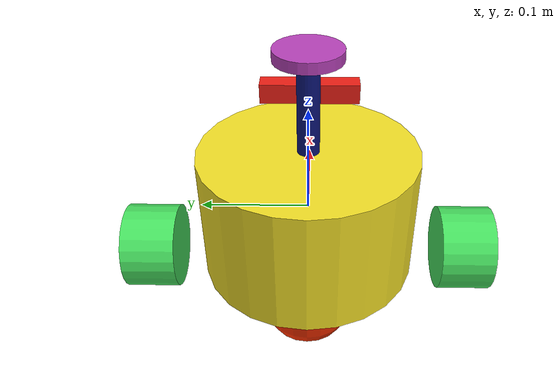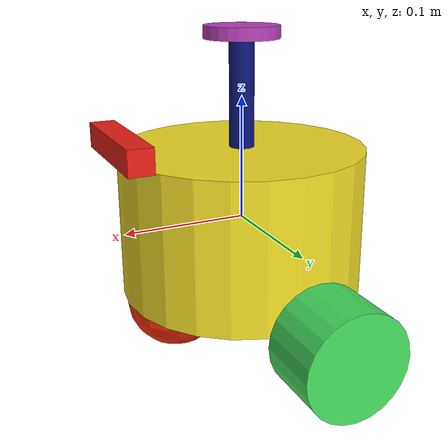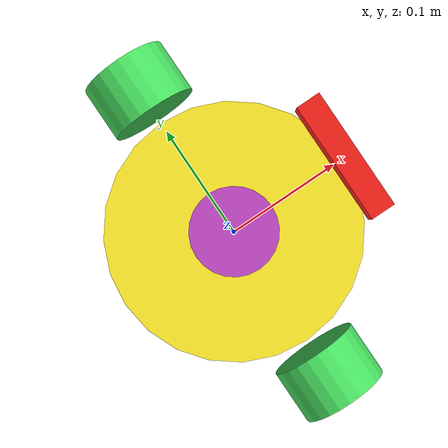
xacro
<robot name="robot" xmlns:xacro="http://www.ros.org/wiki/xacro">
  <link name="base_footprint"></link>
  <joint name="base_joint" type="fixed">
    <parent link="base_footprint" />
    <child link="base_link" />
    <origin xyz="0 0 0" rpy="0 0 0" />
  </joint>
  <link name="base_link">
    <visual>
      <origin xyz="0 0 0" rpy="0 0 0" />
      <geometry>
        <cylinder radius="0.1" length="0.12" />
      </geometry>
      <material name="base_link-material">
        <color rgba="0.9473065367320066 0.8713671191959567 0.14702726648767014 1" />
      </material>
    </visual>
    <collision>
      <origin xyz="0 0 0" rpy="0 0 0" />
      <geometry>
        <cylinder radius="0.5" length="1" />
      </geometry>
    </collision>
    <inertial>
      <origin xyz="0 0 0" rpy="0 0 0" />
      <mass value="200" />
      <inertia ixx="66.66666666666666" ixy="0" ixz="0" iyy="100" iyz="0" izz="66.66666666666666" />
    </inertial>
  </link>
  <joint name="base_link_to_imu" type="fixed">
    <parent link="base_link" />
    <child link="imu" />
    <origin xyz="0 0 0" rpy="0 0 0" />
  </joint>
  <link name="imu">
    <visual>
      <origin xyz="0 0 0" rpy="0 0 0" />
      <geometry>
        <box size="0.1 0.1 0.1" />
      </geometry>
      <material name="imu-material">
        <color rgba="0.9215818562755338 0.11953842797895521 0.08228270712149792 1" />
      </material>
    </visual>
    <collision>
      <origin xyz="0 0 0" rpy="0 0 0" />
      <geometry>
        <box size="0.1 0.1 0.1" />
      </geometry>
    </collision>
    <inertial>
      <origin xyz="0 0 0" rpy="0 0 0" />
      <mass value="1" />
      <inertia ixx="0.16666666666666666" ixy="0" ixz="0" iyy="0.16666666666666666" iyz="0" izz="0.16666666666666666" />
    </inertial>
        <sensor type="imu" name="imu">
            <always_on>true</always_on>
            <update_rate>100</update_rate>
            <origin>0 0 0 0 0 0</origin>
            <imu>
                <noise>
                    <type>gaussian</type>
                    <mean>0</mean>
                    <stddev>0</stddev>
                </noise>
            </imu>
        </sensor>
      </link>
  <gazebo reference="imu">
    <sensor type="imu" name="imu_sensor">
      <plugin filename="libgazebo_ros_imu_sensor.so" name="imu_plugin">
        <ros>
          <namespace>/demo</namespace>
          <remapping>~/out:=imu</remapping>
        </ros>
        <initial_orientation_as_reference>false</initial_orientation_as_reference>
      </plugin>
      <always_on>true</always_on>
      <update_rate>100</update_rate>
      <visualize>true</visualize>
    </sensor>
  </gazebo>
  <joint name="base_link_to_camera" type="fixed">
    <parent link="base_link" />
    <child link="camera" />
    <origin xyz="0.1 0 0.07" rpy="0 0 0" />
  </joint>
  <link name="camera">
    <visual>
      <origin xyz="0 0 0" rpy="0 0 0" />
      <geometry>
        <box size="0.02 0.1 0.02" />
      </geometry>
      <material name="camera-material">
        <color rgba="0.9215818562755338 0.11953842797895521 0.08228270712149792 1" />
      </material>
    </visual>
    <collision>
      <origin xyz="0 0 0" rpy="0 0 0" />
      <geometry>
        <box size="0.02 0.1 0.02" />
      </geometry>
    </collision>
    <inertial>
      <origin xyz="0 0 0" rpy="0 0 0" />
      <mass value="1" />
      <inertia ixx="0.16666666666666666" ixy="0" ixz="0" iyy="0.16666666666666666" iyz="0" izz="0.16666666666666666" />
    </inertial>
        <sensor name="camera" type="camera">
            <always_on>true</always_on>
            <update_rate>100</update_rate>
            <origin>0.1 0 0.07 0 0 0</origin>
            <camera>
                <horizontal_fov>1.3962634</horizontal_fov>
                <image>
                    <width>800</width>
                    <height>600</height>
                    <format>R8G8B8</format>
                </image>
                <clip>
                    <near>0.1</near>
                    <far>100</far>
                </clip>
                <noise>
                    <type>gaussian</type>
                    <mean>0.01</mean>
                </noise>
            </camera>
        </sensor>
      </link>
  <gazebo reference="camera">
    <sensor type="camera" name="camera_sensor">
      <update_rate>30.0</update_rate>
      <camera name="head">
        <horizontal_fov>1.3962634</horizontal_fov>
        <image>
          <width>800</width>
          <height>600</height>
          <format>R8G8B8</format>
        </image>
        <clip>
          <near>0.02</near>
          <far>300</far>
        </clip>
        <noise>
          <type>gaussian</type>
          <mean>0.0</mean>
          <stddev>0.007</stddev>
        </noise>
      </camera>
      <plugin name="camera_controller" filename="libgazebo_ros_camera.so">
        <ros>
          <namespace>/demo</namespace>
        </ros>
        <camera_name>camera</camera_name>
        <frame_name>camera</frame_name>
        <hack_baseline>0.07</hack_baseline>
      </plugin>
    </sensor>
  </gazebo>

  <joint name="base_link_to_front_chaster" type="fixed">
    <parent link="base_link" />
    <child link="front_chaster" />
    <origin xyz="0.06 0 -0.06" rpy="0 0 0" />
  </joint>
  <link name="front_chaster">
    <visual>
      <origin xyz="0 0 0" rpy="0 0 0" />
      <geometry>
        <sphere radius="0.04" />
      </geometry>
      <material name="front_chaster-material">
        <color rgba="1 0.181164244239483 0.04231141061442144 1" />
      </material>
    </visual>
    <collision>
      <origin xyz="0 0 0" rpy="0 0 0" />
      <geometry>
        <sphere radius="0.04" />
      </geometry>
    </collision>
    <inertial>
      <origin xyz="0 0 0" rpy="0 0 0" />
      <mass value="1" />
      <inertia ixx="0.4" ixy="0" ixz="0" iyy="0.4" iyz="0" izz="0.4" />
    </inertial>
  </link>
  <joint name="base_link_to_back_chaster" type="fixed">
    <parent link="base_link" />
    <child link="back_chaster" />
    <origin xyz="-0.06 0 -0.06" rpy="0 0 0" />
  </joint>
  <link name="back_chaster">
    <visual>
      <origin xyz="0 0 0" rpy="0 0 0" />
      <geometry>
        <sphere radius="0.04" />
      </geometry>
      <material name="back_chaster-material">
        <color rgba="1 0.1878207722902346 0 1" />
      </material>
    </visual>
    <collision>
      <origin xyz="0 0 0" rpy="0 0 0" />
      <geometry>
        <sphere radius="0.04" />
      </geometry>
    </collision>
    <inertial>
      <origin xyz="0 0 0" rpy="0 0 0" />
      <mass value="1" />
      <inertia ixx="0.4" ixy="0" ixz="0" iyy="0.4" iyz="0" izz="0.4" />
    </inertial>
  </link>
  <joint name="base_link_to_lidar" type="fixed">
    <parent link="base_link" />
    <child link="lidar" />
    <origin xyz="0 0 0.15000000000000002" rpy="0 0 0" />
  </joint>
  <link name="lidar">
    <visual>
      <origin xyz="0 0 0" rpy="0 0 0" />
      <geometry>
        <cylinder radius="0.03" length="0.01" />
      </geometry>
      <material name="lidar-material">
        <color rgba="0.7156935005005721 0.2541520943200296 0.7230551289161951 1" />
      </material>
    </visual>
    <collision>
      <origin xyz="0 0 0" rpy="0 0 0" />
      <geometry>
        <cylinder radius="0.03" length="0.01" />
      </geometry>
    </collision>
    <inertial>
      <origin xyz="0 0 0" rpy="0 0 0" />
      <mass value="1" />
      <inertia ixx="0.3333333333333333" ixy="0" ixz="0" iyy="0.5" iyz="0" izz="0.3333333333333333" />
    </inertial>
        <sensor type="lidar" name="lidar">
            <always_on>true</always_on>
            <update_rate>5</update_rate>
            <origin>0 0 0.15000000000000002 0 0 0</origin>
            <ray>
                <scan>
                    <horizontal>
                        <samples>360</samples>
                        <resolution>1</resolution>
                        <min_angle>0</min_angle>
                        <max_angle>6.28</max_angle>
                    </horizontal>
                    <range>
                        <min>0.12</min>
                        <max>3.5</max>
                        <resolution>0.015</resolution>
                    </range>
                </scan>
                <noise>
                    <type>gaussian</type>
                    <mean>0</mean>
                    <stddev>0.01</stddev>
                </noise>
            </ray>
        </sensor>
      </link>
  <gazebo reference="lidar">
    <sensor type="ray" name="lidar_sensor">
      <pose>0 0 0 0 0 0</pose>
      <visualize>true</visualize>
      <update_rate>10</update_rate>
      <ray>
        <scan>
          <horizontal>
            <samples>360</samples>
            <resolution>1</resolution>
            <min_angle>0</min_angle>
            <max_angle>6.28</max_angle>
          </horizontal>
        </scan>
        <range>
          <min>0.12</min>
          <max>3.5</max>
          <resolution>0.015</resolution>
        </range>
        <noise>
          <type>gaussian</type>
          <mean>0.0</mean>
          <stddev>0.01</stddev>
        </noise>
      </ray>
      <plugin name="laser_controller" filename="libgazebo_ros_laser.so">
        <ros>
          <namespace>/demo</namespace>
        </ros>
        <topicName>scan</topicName>
        <frameName>lidar</frameName>
      </plugin>
    </sensor>
  </gazebo>
  <joint name="base_link_to_left_wheel" type="continuous">
    <parent link="base_link" />
    <child link="left_wheel" />
    <origin xyz="0 0.15 -0.04880298219344714" rpy="-1.5707963267948963 0 0" />
    <axis xyz="0 0 1"/>
  </joint>
  <link name="left_wheel">
    <visual>
      <origin xyz="0 0 0" rpy="0 0 0" />
      <geometry>
        <cylinder radius="0.04" length="0.05" />
      </geometry>
      <material name="left_wheel-material">
        <color rgba="0.2746773120495699 0.8713671191959567 0.3712376804636741 1" />
      </material>
    </visual>
    <collision>
      <origin xyz="0 0 0" rpy="0 0 0" />
      <geometry>
        <cylinder radius="0.04" length="0.05" />
      </geometry>
    </collision>
    <inertial>
      <origin xyz="0 0 0" rpy="0 0 0" />
      <mass value="1" />
      <inertia ixx="0.3333333333333333" ixy="0" ixz="0" iyy="0.5" iyz="0" izz="0.3333333333333333" />
    </inertial>
  </link>
  <joint name="base_link_to_right_wheel" type="continuous">
    <parent link="base_link" />
    <child link="right_wheel" />
    <origin xyz="0 -0.15 -0.04880298219344714" rpy="-1.5707963267948963 0 0" />
    <axis xyz="0 0 1"/>
  </joint>
  <link name="right_wheel">
    <visual>
      <origin xyz="0 0 0" rpy="0 0 0" />
      <geometry>
        <cylinder radius="0.04" length="0.05" />
      </geometry>
      <material name="right_wheel-material">
        <color rgba="0.2746773120495699 0.8713671191959567 0.3712376804636741 1" />
      </material>
    </visual>
    <collision>
      <origin xyz="0 0 0" rpy="0 0 0" />
      <geometry>
        <cylinder radius="0.04" length="0.05" />
      </geometry>
    </collision>
    <inertial>
      <origin xyz="0 0 0" rpy="0 0 0" />
      <mass value="1" />
      <inertia ixx="0.3333333333333333" ixy="0" ixz="0" iyy="0.5" iyz="0" izz="0.3333333333333333" />
    </inertial>
  </link>
  <joint name="base_link_to_lidar_support" type="fixed">
    <parent link="base_link" />
    <child link="lidar_support" />
    <origin xyz="0 0 0.1" rpy="0 0 0" />
  </joint>
  <link name="lidar_support">
    <visual>
      <origin xyz="0 0 0" rpy="0 0 0" />
      <geometry>
        <cylinder radius="0.01" length="0.1" />
      </geometry>
      <material name="lidar_support-material">
        <color rgba="0.04666508633021928 0.08228270712149792 0.4735314961384573 1" />
      </material>
    </visual>
    <collision>
      <origin xyz="0 0 0" rpy="0 0 0" />
      <geometry>
        <cylinder radius="0.5" length="1" />
      </geometry>
    </collision>
    <inertial>
      <origin xyz="0 0 0" rpy="0 0 0" />
      <mass value="1" />
      <inertia ixx="0.3333333333333333" ixy="0" ixz="0" iyy="0.5" iyz="0" izz="0.3333333333333333" />
    </inertial>
  </link>
  <ros2_control name="diff_drive_controller" type="system">
    <hardware>
      <plugin>gazebo_ros2_control/GazeboSystem</plugin>
    </hardware>
    <joint name="base_link_to_left_wheel">
      <command_interface name="velocity"/>
      <state_interface name="position"/>
      <state_interface name="velocity"/>
    </joint>
    <joint name="base_link_to_right_wheel">
      <command_interface name="velocity"/>
      <state_interface name="position"/>
      <state_interface name="velocity"/>
    </joint>
  </ros2_control>
  <gazebo>
    <plugin name="gazebo_ros2_control" filename="libgazebo_ros2_control.so">
      <parameters>$(find robot_pkg)/config/controller.yaml</parameters>
    </plugin>
  </gazebo>
</robot>
